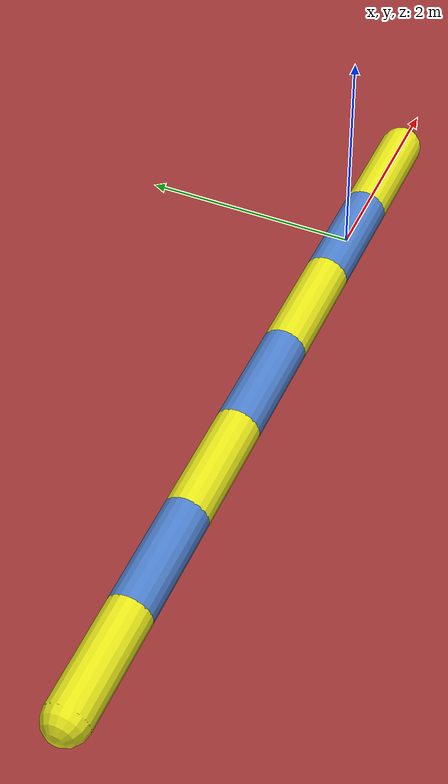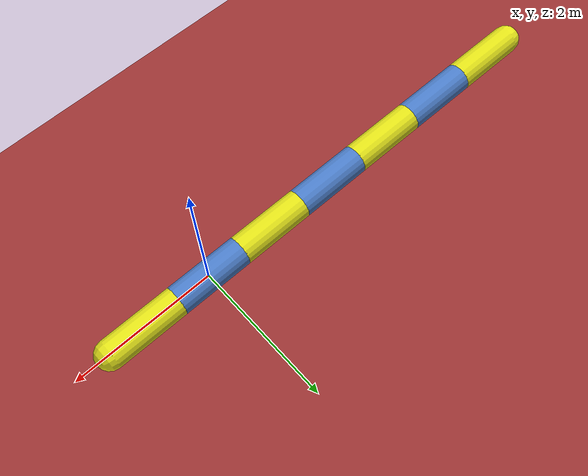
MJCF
<?xml version="1.0" ?>
<mujoco model="sliding_creature">
  <option timestep="0.01"/>
  <default>
    <joint armature="0.1"/>
  </default>
  <asset>
    <material name="color1_limb" rgba="0.3 0.5 0.8 1"/>
    <material name="color_plane" rgba="0.6 0.2 0.2 1"/>
    <material name="color2_limb" rgba="0.9 0.9 0.1 1"/>
  </asset>
  <worldbody>
    <light cutoff="100" diffuse="1 1 1" dir="-0 0 -1.3" directional="true" exponent="1" pos="0 0 1.3" specular=".1 .1 .1"/>
    <geom conaffinity="1" condim="3" material="color_plane" name="floor" pos="0 0 -0.1" size="40 40 0.1" type="plane"/>
    <body name="torso" pos="0 0 0">
      <camera name="track" mode="trackcom" pos="0 -3 3" xyaxes="1 0 0 0 1 1"/>
      <geom density="1000" fromto="1.5 0 0 0.5 0 0" size="0.2" type="capsule" material="color2_limb"/>
      <joint name="free_body_rot" pos="0 0 0" type="free"/>
      <body name="limb1" pos="0.5 0 0">
        <geom density="1000" fromto="0 0 0 -1 0 0" size="0.2" type="capsule" material="color1_limb"/>
        <joint axis="0 0 1" limited="true" name="joint1" pos="0 0 0" range="-100 100" type="hinge"/>
        <body name="limb2" pos="-1 0 0">
          <geom density="1000" fromto="0 0 0 -1 0 0" size="0.2" type="capsule" material="color2_limb"/>
          <joint axis="0 0 1" limited="true" name="joint2" pos="0 0 0" range="-100 100" type="hinge"/>
          <body name="limb3" pos="-1 0 0">
            <geom density="1000" fromto="0 0 0 -1 0 0" size="0.2" type="capsule" material="color1_limb"/>
            <joint axis="0 0 1" limited="true" name="joint3" pos="0 0 0" range="-100 100" type="hinge"/>
            <body name="limb4" pos="-1 0 0">
              <geom density="1000" fromto="0 0 0 -1 0 0" size="0.2" type="capsule" material="color2_limb"/>
              <joint axis="0 0 1" limited="true" name="joint4" pos="0 0 0" range="-100 100" type="hinge"/>
              <body name="limb5" pos="-1 0 0">
                <geom density="1000" fromto="0 0 0 -1 0 0" size="0.2" type="capsule" material="color1_limb"/>
                <joint axis="0 0 1" limited="true" name="joint5" pos="0 0 0" range="-100 100" type="hinge"/>
                <body name="limb6" pos="-1 0 0">
                  <geom density="1000" fromto="0 0 0 -1 0 0" size="0.2" type="capsule" material="color2_limb"/>
                  <joint axis="0 0 1" limited="true" name="joint6" pos="0 0 0" range="-100 100" type="hinge"/>
                </body>
              </body>
            </body>
          </body>
        </body>
      </body>
    </body>
  </worldbody>
  <actuator>
    <motor ctrllimited="true" ctrlrange="-1 1" gear="300.0" joint="joint1"/>
    <motor ctrllimited="true" ctrlrange="-1 1" gear="300.0" joint="joint2"/>
    <motor ctrllimited="true" ctrlrange="-1 1" gear="300.0" joint="joint3"/>
    <motor ctrllimited="true" ctrlrange="-1 1" gear="300.0" joint="joint4"/>
    <motor ctrllimited="true" ctrlrange="-1 1" gear="300.0" joint="joint5"/>
    <motor ctrllimited="true" ctrlrange="-1 1" gear="300.0" joint="joint6"/>
  </actuator>
</mujoco>
